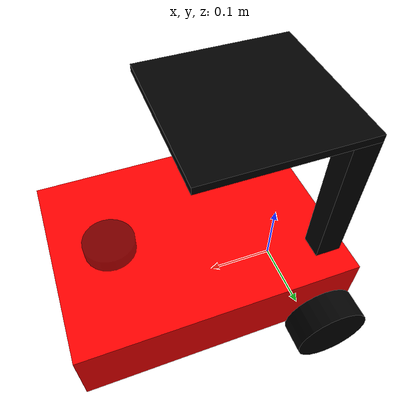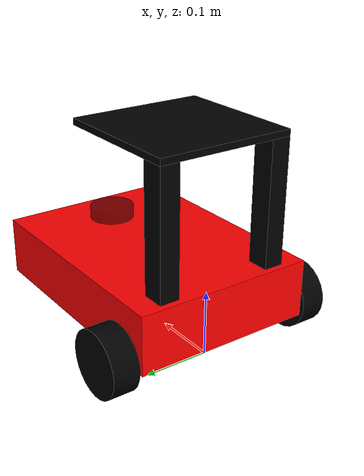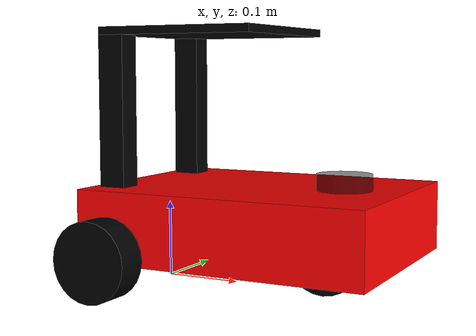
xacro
<?xml version="1.0" ?>
<robot name="luxshare_robot" xmlns:xacro="http://www.ros.org/wiki/xacro">

    <link name="base_footprint"/>

    <joint name="base_joint" type="fixed">
        <parent link="base_footprint"/>
        <child link="base_link"/>
        <origin xyz="0.14 0.0 0.085" rpy="0 0 0"/>
    </joint>

    <link name="base_link">
        <visual>
            <origin xyz=" 0.0 0 0.00" rpy="0 0 0" />
            <geometry>
                <box size="0.375 0.28 0.09"/>
            </geometry>
            <material name="red">
                <color rgba="1 0 0 1"/>
            </material>
        </visual>
        <collision>
            <origin xyz=" 0.14 0 0.085" rpy="0 0 0" />
            <geometry>
                <box size="0.375 0.28 0.09"/>
            </geometry>
            <material name="red">
                <color rgba="1 0 0 1"/>
            </material>
        </collision>
        <inertial>
            <mass value="0.2"/>
            <inertia ixx="0.1239375" ixy="0" ixz="0" iyy="0.18252083" iyz="0" izz="0.07208333"/>
        </inertial>
    </link>

    <!-- pillar joint -->
    <link name="panel_link">
        <visual>
            <origin xyz="0.0875 -0.09 0.005" rpy="0 0 0"/>
            <geometry>
                <box size="0.21 0.21 0.01"/>
            </geometry>
            <material name="black">
                <color rgba="0.0 0.0 0.0 1" />
            </material>
        </visual>
        <collision>
            <origin xyz=" 0.0875 -0.09 0.005" rpy="0 0 0" />
            <geometry>
                <box size="0.21 0.21 0.01"/>
            </geometry>
            <material name="black">
                <color rgba="0 0 0 1"/>
            </material>
        </collision>
        <inertial>
            <mass value="0.3"/>
            <inertia ixx="0.1239375" ixy="0" ixz="0" iyy="0.18252083" iyz="0" izz="0.07208333"/>
        </inertial>
    </link>

    <link name="pillar_l_link">
        <visual>
        <origin xyz="0 0 0.095" rpy="0 0 0"/>
        <geometry>
            <box size="0.035 0.03 0.19"/>
        </geometry>
        <material name="black">
            <color rgba="0.0 0.0 0.0 1" />
        </material>
        </visual>
    </link>

    <link name="pillar_r_link">
        <visual>
        <origin xyz="0 0 0.095" rpy="0 0 0"/>
        <geometry>
            <box size="0.035 0.03 0.19"/>
        </geometry>
        <material name="black">
            <color rgba="0.0 0.0 0.0 1" />
        </material>
        </visual>
    </link>

    <joint name="pillar_dl_joint" type="fixed">
        <parent link="base_link" />
        <child link="pillar_l_link" />
        <origin xyz="-0.16 0.09 0.045" />
    </joint>

    <joint name="pillar_dr_joint" type="fixed">
        <parent link="base_link" />
        <child link="pillar_r_link" />
        <origin xyz="-0.16 -0.09 0.045" />
    </joint>

    <joint name="pillar_ul_joint" type="fixed">
        <parent link="pillar_l_link" />
        <child link="panel_link" />
        <origin xyz="0 0 0.19" />
    </joint>

    <!-- laser link -->
    <link name="laser_link">
        <visual>
        <origin xyz="0 0 0" rpy="0 0 0"/>
        <geometry>
            <cylinder length="0.02" radius="0.035"/>
        </geometry>
        <material name="black">
            <color rgba="0.0 0.0 0.0 0.5" />
        </material>
        </visual>
    </link>

    <!-- laser joint -->
    <joint name="laser_joint" type="fixed">
        <parent link="base_link" />
        <child link="laser_link" />
        <origin xyz="0.11 0 0.055" rpy="0 0 0"/>
    </joint>

    <link name="imu_link">
        <visual>
        <origin xyz="0 0 0.0" rpy="0 0 0"/>
        <geometry>
            <box size="0.02 0.02 0.02"/>
        </geometry>
        </visual>
    </link>

    <!-- imu joint -->
    <joint name="imu_joint" type="fixed">
        <parent link="base_link" />
        <child link="imu_link" />
        <origin xyz="-0.14 0 0.0" />
    </joint>

    <joint name="left_wheel_joint" type="continuous">
        <origin xyz="-0.14 0.165 -0.035" rpy="1.57 0 0"/>
        <parent link="base_link"/>
        <child link="left_wheel_link"/>
        <axis xyz="0 0 -1"/>
    </joint>

    <link name="left_wheel_link">
        <visual>
            <origin xyz="0 0 0" rpy="0 0 0" />
            <geometry>
                <cylinder radius="0.05" length = "0.04"/>
            </geometry>
            <material name="black">
                <color rgba="0 0 0 1"/>
            </material>
        </visual>
        <collision>
            <origin xyz="0 0 0" rpy="0 0 0" />
            <geometry>
                <cylinder radius="0.05" length = "0.04"/>
            </geometry>
            <material name="black">
                <color rgba="0 0 0 1"/>
            </material>
        </collision>
        <inertial>
            <mass value="0.2"/>
        <inertia ixx="0.000190416666667" ixy="0" ixz="0" iyy="0.0001904" iyz="0" izz="0.00036"/>
        </inertial>
    </link>

    <joint name="right_wheel_joint" type="continuous">
        <origin xyz="-0.14 -0.165 -0.035" rpy="1.57 0 0"/>
        <parent link="base_link"/>
        <child link="right_wheel_link"/>
        <axis xyz="0 0 -1"/>
    </joint>

    <link name="right_wheel_link">
        <visual>
            <origin xyz="0 0 0" rpy="0 0 0" />
            <geometry>
                <cylinder radius="0.05" length = "0.04"/>
            </geometry>
            <material name="black">
                <color rgba="0 0 0 1"/>
            </material>
        </visual>
        <collision>
            <origin xyz="0 0 0" rpy="0 0 0" />
            <geometry>
                <cylinder radius="0.05" length = "0.04"/>
            </geometry>
            <material name="black">
                <color rgba="0 0 0 1"/>
            </material>
        </collision>
        <inertial>
            <mass value="0.2"/>
        <inertia ixx="0.000190416666667" ixy="0" ixz="0" iyy="0.0001904" iyz="0" izz="0.00036"/>
        </inertial>
    </link>

    <joint name="front_wheel_joint" type="fixed">
        <origin xyz="0.09 0 -0.035" rpy="1.57 0 0"/>
        <parent link="base_link"/>
        <child link="front_wheel_link"/>
        <axis xyz="0 0 1"/>
    </joint>

    <link name="front_wheel_link">
        <visual>
            <origin xyz="0 0 0" rpy="0 0 0" />
            <geometry>
                <cylinder radius="0.05" length = "0.04"/>
            </geometry>
            <material name="black">
                <color rgba="0 0 0 1"/>
            </material>
        </visual>
        <collision>
            <origin xyz="0 0 0" rpy="0 0 0" />
            <geometry>
                <cylinder radius="0.05" length = "0.04"/>
            </geometry>
            <material name="black">
                <color rgba="0 0 0 1"/>
            </material>
        </collision>
        <inertial>
            <mass value="0.02"/>
      <inertia ixx="0.000190416666667" ixy="0" ixz="0" iyy="0.0001904" iyz="0" izz="0.00036"/>
    </inertial>
    </link>

    <gazebo reference="left_wheel_link">
        <material>Gazebo/Black</material>
    </gazebo>

    <gazebo reference="right_wheel_link">
        <material>Gazebo/Black</material>
    </gazebo>

    <gazebo reference="front_wheel_link">
        <material>Gazebo/Black</material>
    </gazebo>

    <gazebo reference="front_wheel_link">
        <mu1 value="0.0"/>
        <mu2 value="0.0"/>
        <kp value="1000000.0" />
        <kd value="10.0" />
    </gazebo>

    <gazebo reference="laser_link">
        <sensor name="laser_sensor" type="ray">
        <always_on>true</always_on>
        <visualize>true</visualize>
        <update_rate>10</update_rate>
        <ray>
            <scan>
                <horizontal>
                <samples>360</samples>
                <resolution>1.000000</resolution>
                <min_angle>0.000000</min_angle>
                <max_angle>6.280000</max_angle>
                </horizontal>
            </scan>
            <range>
                <min>0.30000</min>
                <max>10.0</max>
                <resolution>0.02000</resolution>
            </range>
            <noise>
                <type>gaussian</type>
                <mean>0.0</mean>
                <stddev>0.065</stddev>
            </noise>
        </ray>

        <plugin name="laserscan" filename="libgazebo_ros_ray_sensor.so">
            <ros>
            <remapping>~/out:=scan</remapping>
            </ros>
            <output_type>sensor_msgs/LaserScan</output_type>
            <frame_name>laser_link</frame_name>
        </plugin>
        </sensor>
    </gazebo>

    <gazebo reference="imu_link">
        <sensor name="imu_sensor" type="imu">
        <plugin filename="libgazebo_ros_imu_sensor.so" name="imu_plugin">
            <ros>
                <namespace>/</namespace>
                <remapping>~/out:=imu</remapping>
            </ros>
            <frame_name>imu_link</frame_name>
            <initial_orientation_as_reference>false</initial_orientation_as_reference>
            </plugin>
            <always_on>true</always_on>
            <update_rate>100</update_rate>
            <visualize>true</visualize>
            <imu>
            <angular_velocity>
                <x>
                <noise type="gaussian">
                    <mean>0.0</mean>
                    <stddev>2e-4</stddev>
                    <bias_mean>0.0000075</bias_mean>
                    <bias_stddev>0.0000008</bias_stddev>
                </noise>
                </x>
                <y>
                <noise type="gaussian">
                    <mean>0.0</mean>
                    <stddev>2e-4</stddev>
                    <bias_mean>0.0000075</bias_mean>
                    <bias_stddev>0.0000008</bias_stddev>
                </noise>
                </y>
                <z>
                <noise type="gaussian">
                    <mean>0.0</mean>
                    <stddev>2e-4</stddev>
                    <bias_mean>0.0000075</bias_mean>
                    <bias_stddev>0.0000008</bias_stddev>
                </noise>
                </z>
            </angular_velocity>
            <linear_acceleration>
                <x>
                <noise type="gaussian">
                    <mean>0.0</mean>
                    <stddev>1.7e-2</stddev>
                    <bias_mean>0.1</bias_mean>
                    <bias_stddev>0.001</bias_stddev>
                </noise>
                </x>
                <y>
                <noise type="gaussian">
                    <mean>0.0</mean>
                    <stddev>1.7e-2</stddev>
                    <bias_mean>0.1</bias_mean>
                    <bias_stddev>0.001</bias_stddev>
                </noise>
                </y>
                <z>
                <noise type="gaussian">
                    <mean>0.0</mean>
                    <stddev>1.7e-2</stddev>
                    <bias_mean>0.1</bias_mean>
                    <bias_stddev>0.001</bias_stddev>
                </noise>
                </z>
            </linear_acceleration>
            </imu>
        </sensor>
    </gazebo>

    <gazebo>
        <plugin name="p3d_base_controller" filename="libgazebo_ros_p3d.so">
            <ros>
                <namespace>gazebo_p3d</namespace>
                <remapping>odom:=ground_truth/pose</remapping>
            </ros>
            <frame_name>world</frame_name>
            <body_name>base_footprint</body_name>
            <update_rate>50.0</update_rate>
            <gaussian_noise>0.0</gaussian_noise>
            <xyz_offset>0 0 0</xyz_offset>
            <rpy_offset>0 0 0</rpy_offset>
        </plugin>
    </gazebo>

    <ros2_control name="GazeboSystem" type="system">
        <hardware>
            <plugin>gazebo_ros2_control/GazeboSystem</plugin>
        </hardware>
        <joint name="left_wheel_joint">
            <command_interface name="velocity">
            <param name="min">-1</param>
            <param name="max">1</param>
            </command_interface>
            <state_interface name="position"/>
            <state_interface name="velocity"/>
        </joint>
        <joint name="right_wheel_joint">
            <command_interface name="velocity">
            <param name="min">-1</param>
            <param name="max">1</param>
            </command_interface>
            <state_interface name="position"/>
            <state_interface name="velocity"/>
        </joint>
    </ros2_control>

    <gazebo>
        <!-- Joint state publisher -->
        <plugin filename="libgazebo_ros2_control.so" name="gazebo_ros2_control">
            <ros>
                <namespace>/</namespace>
                <remapping>/diff_drive_base_controller/cmd_vel_unstamped:=cmd_vel</remapping>
                <remapping>/diff_drive_base_controller/odom:=wheel_odom</remapping>
            </ros>
            <parameters>$(find robot_description)/config/diff_robot_controller.yaml</parameters>
        </plugin>
    </gazebo>

</robot>
